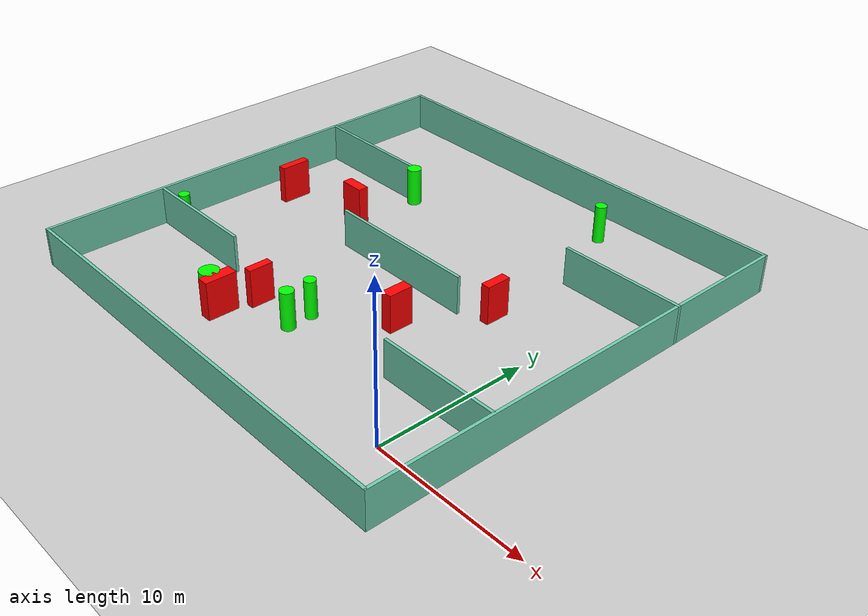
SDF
<sdf version="1.7">
 <world name="default">
  <light name="sun" type="directional">
   <pose>0 0 10 0 -0 0</pose>
   <diffuse>0.8 0.8 0.8 1</diffuse>
   <specular>0.2 0.2 0.2 1</specular>
   <attenuation>
    <range>1000</range>
    <constant>0.9</constant>
    <linear>0.01</linear>
    <quadratic>0.001</quadratic>
   </attenuation>
   <direction>-0.5 0.1 -0.9</direction>
   <spot><inner_angle>0</inner_angle><outer_angle>0</outer_angle><falloff>0</falloff></spot>
  </light>
  <model name="ground_plane">
   <static>1</static>
   <link name="link">
    <collision name="collision">
     <geometry><plane><normal>0 0 1</normal><size>100 100</size></plane></geometry>
     <surface>
      <contact><collide_bitmask>65535</collide_bitmask></contact>
      <friction><ode><mu>100</mu><mu2>50</mu2></ode></friction>
     </surface>
    </collision>
    <visual name="visual">
     <cast_shadows>0</cast_shadows>
     <geometry><plane><normal>0 0 1</normal><size>100 100</size></plane></geometry>
     <material>
      <script><uri>file://media/materials/scripts/gazebo.material</uri><name>Gazebo/Grey</name></script>
     </material>
    </visual>
   </link>
  </model>
  <gravity>0 0 -9.8</gravity>
  <magnetic_field>6e-06 2.3e-05 -4.2e-05</magnetic_field>
  <atmosphere type="adiabatic"/>
  <physics type="ode">
   <max_step_size>0.001</max_step_size>
   <real_time_factor>1</real_time_factor>
   <real_time_update_rate>1000</real_time_update_rate>
  </physics>
  <scene><ambient>0.4 0.4 0.4 1</ambient><background>0.7 0.7 0.7 1</background><shadows>1</shadows></scene>
  <spherical_coordinates>
   <surface_model>EARTH_WGS84</surface_model>
   <latitude_deg>0</latitude_deg>
   <longitude_deg>0</longitude_deg>
   <elevation>0</elevation>
   <heading_deg>0</heading_deg>
  </spherical_coordinates>
  <model name="my_base_walls">
   <link name="Wall_10">
    <collision name="Wall_10_Collision">
     <geometry><box><size>8.2 0.2 2.5</size></box></geometry>
     <pose>0 0 1.25 0 -0 0</pose>
    </collision>
    <visual name="Wall_10_Visual">
     <pose>0 0 1.25 0 -0 0</pose>
     <geometry><box><size>8.2 0.2 2.5</size></box></geometry>
     <material>
      <script><uri>file://media/materials/scripts/gazebo.material</uri><name>Gazebo/Grey</name></script>
      <ambient>0.435294 0.796078 0.67451 1</ambient>
     </material>
     <meta><layer>0</layer></meta>
    </visual>
    <pose>-11 -7 0 0 -0 0</pose>
   </link>
   <link name="Wall_12">
    <collision name="Wall_12_Collision">
     <geometry><box><size>8.2 0.2 2.5</size></box></geometry>
     <pose>0 0 1.25 0 -0 0</pose>
    </collision>
    <visual name="Wall_12_Visual">
     <pose>0 0 1.25 0 -0 0</pose>
     <geometry><box><size>8.2 0.2 2.5</size></box></geometry>
     <material>
      <script><uri>file://media/materials/scripts/gazebo.material</uri><name>Gazebo/Grey</name></script>
      <ambient>0.435294 0.796078 0.67451 1</ambient>
     </material>
     <meta><layer>0</layer></meta>
    </visual>
    <pose>-11 7 0 0 -0 0</pose>
   </link>
   <link name="Wall_14">
    <collision name="Wall_14_Collision">
     <geometry><box><size>8.2 0.2 2.5</size></box></geometry>
     <pose>0 0 1.25 0 -0 0</pose>
    </collision>
    <visual name="Wall_14_Visual">
     <pose>0 0 1.25 0 -0 0</pose>
     <geometry><box><size>8.2 0.2 2.5</size></box></geometry>
     <material>
      <script><uri>file://media/materials/scripts/gazebo.material</uri><name>Gazebo/Grey</name></script>
      <ambient>0.435294 0.796078 0.67451 1</ambient>
     </material>
     <meta><layer>0</layer></meta>
    </visual>
    <pose>11 7 0 0 -0 3.14159</pose>
   </link>
   <link name="Wall_16">
    <collision name="Wall_16_Collision">
     <geometry><box><size>10.2 0.2 2.5</size></box></geometry>
     <pose>0 0 1.25 0 -0 0</pose>
    </collision>
    <visual name="Wall_16_Visual">
     <pose>0 0 1.25 0 -0 0</pose>
     <geometry><box><size>10.2 0.2 2.5</size></box></geometry>
     <material>
      <script><uri>file://media/materials/scripts/gazebo.material</uri><name>Gazebo/Grey</name></script>
      <ambient>0.435294 0.796078 0.67451 1</ambient>
     </material>
     <meta><layer>0</layer></meta>
    </visual>
    <pose>0 0 0 0 -0 3.14159</pose>
   </link>
   <link name="Wall_2">
    <collision name="Wall_2_Collision">
     <geometry><box><size>30.2 0.2 2.5</size></box></geometry>
     <pose>0 0 1.25 0 -0 0</pose>
    </collision>
    <visual name="Wall_2_Visual">
     <pose>0 0 1.25 0 -0 0</pose>
     <geometry><box><size>30.2 0.2 2.5</size></box></geometry>
     <material>
      <script><uri>file://media/materials/scripts/gazebo.material</uri><name>Gazebo/Grey</name></script>
      <ambient>0.435294 0.796078 0.67451 1</ambient>
     </material>
     <meta><layer>0</layer></meta>
    </visual>
    <pose>0 -15 0 0 -0 3.14159</pose>
   </link>
   <link name="Wall_3">
    <collision name="Wall_3_Collision">
     <geometry><box><size>30.2 0.2 2.5</size></box></geometry>
     <pose>0 0 1.25 0 -0 0</pose>
    </collision>
    <visual name="Wall_3_Visual">
     <pose>0 0 1.25 0 -0 0</pose>
     <geometry><box><size>30.2 0.2 2.5</size></box></geometry>
     <material>
      <script><uri>file://media/materials/scripts/gazebo.material</uri><name>Gazebo/Grey</name></script>
      <ambient>0.435294 0.796078 0.67451 1</ambient>
     </material>
     <meta><layer>0</layer></meta>
    </visual>
    <pose>-15 0 0 0 -0 1.5708</pose>
   </link>
   <link name="Wall_4">
    <collision name="Wall_4_Collision">
     <geometry><box><size>30.2 0.2 2.5</size></box></geometry>
     <pose>0 0 1.25 0 -0 0</pose>
    </collision>
    <visual name="Wall_4_Visual">
     <pose>0 0 1.25 0 -0 0</pose>
     <geometry><box><size>30.2 0.2 2.5</size></box></geometry>
     <material>
      <script><uri>file://media/materials/scripts/gazebo.material</uri><name>Gazebo/Grey</name></script>
      <ambient>0.435294 0.796078 0.67451 1</ambient>
     </material>
     <meta><layer>0</layer></meta>
    </visual>
    <pose>0 15 0 0 -0 0</pose>
   </link>
   <link name="Wall_6">
    <collision name="Wall_6_Collision">
     <geometry><box><size>30.2 0.2 2.5</size></box></geometry>
     <pose>0 0 1.25 0 -0 0</pose>
    </collision>
    <visual name="Wall_6_Visual">
     <pose>0 0 1.25 0 -0 0</pose>
     <geometry><box><size>30.2 0.2 2.5</size></box></geometry>
     <material>
      <script><uri>file://media/materials/scripts/gazebo.material</uri><name>Gazebo/Grey</name></script>
      <ambient>0.435294 0.796078 0.67451 1</ambient>
     </material>
     <meta><layer>0</layer></meta>
    </visual>
    <pose>15 0 0 0 -0 1.5708</pose>
   </link>
   <link name="Wall_8">
    <collision name="Wall_8_Collision">
     <geometry><box><size>8.2 0.2 2.5</size></box></geometry>
     <pose>0 0 1.25 0 -0 0</pose>
    </collision>
    <visual name="Wall_8_Visual">
     <pose>0 0 1.25 0 -0 0</pose>
     <geometry><box><size>8.2 0.2 2.5</size></box></geometry>
     <material>
      <script><uri>file://media/materials/scripts/gazebo.material</uri><name>Gazebo/Grey</name></script>
      <ambient>0.435294 0.796078 0.67451 1</ambient>
     </material>
     <meta><layer>0</layer></meta>
    </visual>
    <pose>11 -7 0 0 -0 3.14159</pose>
   </link>
   <static>1</static>
   <pose>-11 11 0 0 -0 0</pose>
  </model>
  <model name="cylinder1">
   <static>1</static>
   <link name="link">
    <inertial>
     <mass>1</mass>
     <inertia><ixx>0.5</ixx><ixy>0</ixy><ixz>0</ixz><iyy>0.5</iyy><iyz>0</iyz><izz>1</izz></inertia>
    </inertial>
    <collision name="collision">
     <geometry><cylinder><radius>0.35616410990683817</radius><length>2.5</length></cylinder></geometry>
    </collision>
    <visual name="visual">
     <geometry><cylinder><radius>0.35616410990683817</radius><length>2.5</length></cylinder></geometry>
     <material>
      <ambient>0 1 0 1</ambient>
      <diffuse>0 1 0 1</diffuse>
      <specular>0.1 0.1 0.1 1</specular>
      <emissive>0 0 0 0</emissive>
     </material>
    </visual>
   </link>
   <pose>-24.415938988960544 4.564173222321256 1.25 0 0 0</pose>
  </model>
  <model name="cylinder2">
   <static>1</static>
   <link name="link">
    <inertial>
     <mass>1</mass>
     <inertia><ixx>0.5</ixx><ixy>0</ixy><ixz>0</ixz><iyy>0.5</iyy><iyz>0</iyz><izz>1</izz></inertia>
    </inertial>
    <collision name="collision">
     <geometry><cylinder><radius>0.6218655024734534</radius><length>2.5</length></cylinder></geometry>
    </collision>
    <visual name="visual">
     <geometry><cylinder><radius>0.6218655024734534</radius><length>2.5</length></cylinder></geometry>
     <material>
      <ambient>0 1 0 1</ambient>
      <diffuse>0 1 0 1</diffuse>
      <specular>0.1 0.1 0.1 1</specular>
      <emissive>0 0 0 0</emissive>
     </material>
    </visual>
   </link>
   <pose>-15.714042630187972 0.7470523739744555 1.25 0 0 0</pose>
  </model>
  <model name="cylinder3">
   <static>1</static>
   <link name="link">
    <inertial>
     <mass>1</mass>
     <inertia><ixx>0.5</ixx><ixy>0</ixy><ixz>0</ixz><iyy>0.5</iyy><iyz>0</iyz><izz>1</izz></inertia>
    </inertial>
    <collision name="collision">
     <geometry><cylinder><radius>0.3817327580470411</radius><length>2.5</length></cylinder></geometry>
    </collision>
    <visual name="visual">
     <geometry><cylinder><radius>0.3817327580470411</radius><length>2.5</length></cylinder></geometry>
     <material>
      <ambient>0 1 0 1</ambient>
      <diffuse>0 1 0 1</diffuse>
      <specular>0.1 0.1 0.1 1</specular>
      <emissive>0 0 0 0</emissive>
     </material>
    </visual>
   </link>
   <pose>-11.198759305040495 4.494377592120104 1.25 0 0 0</pose>
  </model>
  <model name="cylinder4">
   <static>1</static>
   <link name="link">
    <inertial>
     <mass>1</mass>
     <inertia><ixx>0.5</ixx><ixy>0</ixy><ixz>0</ixz><iyy>0.5</iyy><iyz>0</iyz><izz>1</izz></inertia>
    </inertial>
    <collision name="collision">
     <geometry><cylinder><radius>0.3669790639889936</radius><length>2.5</length></cylinder></geometry>
    </collision>
    <visual name="visual">
     <geometry><cylinder><radius>0.3669790639889936</radius><length>2.5</length></cylinder></geometry>
     <material>
      <ambient>0 1 0 1</ambient>
      <diffuse>0 1 0 1</diffuse>
      <specular>0.1 0.1 0.1 1</specular>
      <emissive>0 0 0 0</emissive>
     </material>
    </visual>
   </link>
   <pose>-6.1283687948692975 23.349534166433184 1.25 0 0 0</pose>
  </model>
  <model name="cylinder5">
   <static>1</static>
   <link name="link">
    <inertial>
     <mass>1</mass>
     <inertia><ixx>0.5</ixx><ixy>0</ixy><ixz>0</ixz><iyy>0.5</iyy><iyz>0</iyz><izz>1</izz></inertia>
    </inertial>
    <collision name="collision">
     <geometry><cylinder><radius>0.44059958313072795</radius><length>2.5</length></cylinder></geometry>
    </collision>
    <visual name="visual">
     <geometry><cylinder><radius>0.44059958313072795</radius><length>2.5</length></cylinder></geometry>
     <material>
      <ambient>0 1 0 1</ambient>
      <diffuse>0 1 0 1</diffuse>
      <specular>0.1 0.1 0.1 1</specular>
      <emissive>0 0 0 0</emissive>
     </material>
    </visual>
   </link>
   <pose>-11.160636026356151 2.843658290977385 1.25 0 0 0</pose>
  </model>
  <model name="cylinder6">
   <static>1</static>
   <link name="link">
    <inertial>
     <mass>1</mass>
     <inertia><ixx>0.5</ixx><ixy>0</ixy><ixz>0</ixz><iyy>0.5</iyy><iyz>0</iyz><izz>1</izz></inertia>
    </inertial>
    <collision name="collision">
     <geometry><cylinder><radius>0.4701286073484526</radius><length>2.5</length></cylinder></geometry>
    </collision>
    <visual name="visual">
     <geometry><cylinder><radius>0.4701286073484526</radius><length>2.5</length></cylinder></geometry>
     <material>
      <ambient>0 1 0 1</ambient>
      <diffuse>0 1 0 1</diffuse>
      <specular>0.1 0.1 0.1 1</specular>
      <emissive>0 0 0 0</emissive>
     </material>
    </visual>
   </link>
   <pose>-17.497675372075488 17.89380539932796 1.25 0 0 0</pose>
  </model>
  <model name="box1">
   <static>1</static>
   <link name="link">
    <inertial>
     <mass>1</mass>
     <inertia><ixx>0.083</ixx><ixy>0</ixy><ixz>0</ixz><iyy>0.083</iyy><iyz>0</iyz><izz>0.083</izz></inertia>
    </inertial>
    <collision name="collision">
     <geometry><box><size>0.5888203377884024 1.6265859462894654 2.5</size></box></geometry>
    </collision>
    <visual name="visual">
     <geometry><box><size>0.5888203377884024 1.6265859462894654 2.5</size></box></geometry>
     <material>
      <ambient>1 0 0 1</ambient>
      <diffuse>1 0 0 1</diffuse>
      <specular>0.1 0.1 0.1 1</specular>
      <emissive>0 0 0 0</emissive>
     </material>
    </visual>
    <sensor name="my_contact" type="contact">
     <contact><collision>box_collision</collision><topic>__default_topic__</topic></contact>
    </sensor>
   </link>
   <pose>-4.275589017489995 12.277458902658818 1.25 0 0 0</pose>
  </model>
  <model name="box2">
   <static>1</static>
   <link name="link">
    <inertial>
     <mass>1</mass>
     <inertia><ixx>0.083</ixx><ixy>0</ixy><ixz>0</ixz><iyy>0.083</iyy><iyz>0</iyz><izz>0.083</izz></inertia>
    </inertial>
    <collision name="collision">
     <geometry><box><size>0.5250984265103604 1.9872496736859016 2.5</size></box></geometry>
    </collision>
    <visual name="visual">
     <geometry><box><size>0.5250984265103604 1.9872496736859016 2.5</size></box></geometry>
     <material>
      <ambient>1 0 0 1</ambient>
      <diffuse>1 0 0 1</diffuse>
      <specular>0.1 0.1 0.1 1</specular>
      <emissive>0 0 0 0</emissive>
     </material>
    </visual>
    <sensor name="my_contact" type="contact">
     <contact><collision>box_collision</collision><topic>__default_topic__</topic></contact>
    </sensor>
   </link>
   <pose>-23.293427354852394 12.356483033826246 1.25 0 0 0</pose>
  </model>
  <model name="box3">
   <static>1</static>
   <link name="link">
    <inertial>
     <mass>1</mass>
     <inertia><ixx>0.083</ixx><ixy>0</ixy><ixz>0</ixz><iyy>0.083</iyy><iyz>0</iyz><izz>0.083</izz></inertia>
    </inertial>
    <collision name="collision">
     <geometry><box><size>1.632762046780756 0.6880876397930101 2.5</size></box></geometry>
    </collision>
    <visual name="visual">
     <geometry><box><size>1.632762046780756 0.6880876397930101 2.5</size></box></geometry>
     <material>
      <ambient>1 0 0 1</ambient>
      <diffuse>1 0 0 1</diffuse>
      <specular>0.1 0.1 0.1 1</specular>
      <emissive>0 0 0 0</emissive>
     </material>
    </visual>
    <sensor name="my_contact" type="contact">
     <contact><collision>box_collision</collision><topic>__default_topic__</topic></contact>
    </sensor>
   </link>
   <pose>-18.329940172688104 13.567627110381515 1.25 0 0 0</pose>
  </model>
  <model name="box4">
   <static>1</static>
   <link name="link">
    <inertial>
     <mass>1</mass>
     <inertia><ixx>0.083</ixx><ixy>0</ixy><ixz>0</ixz><iyy>0.083</iyy><iyz>0</iyz><izz>0.083</izz></inertia>
    </inertial>
    <collision name="collision">
     <geometry><box><size>0.7757945169898666 2.044531981248954 2.5</size></box></geometry>
    </collision>
    <visual name="visual">
     <geometry><box><size>0.7757945169898666 2.044531981248954 2.5</size></box></geometry>
     <material>
      <ambient>1 0 0 1</ambient>
      <diffuse>1 0 0 1</diffuse>
      <specular>0.1 0.1 0.1 1</specular>
      <emissive>0 0 0 0</emissive>
     </material>
    </visual>
    <sensor name="my_contact" type="contact">
     <contact><collision>box_collision</collision><topic>__default_topic__</topic></contact>
    </sensor>
   </link>
   <pose>-14.981625920548248 0.8269080074494286 1.25 0 0 0</pose>
  </model>
  <model name="box5">
   <static>1</static>
   <link name="link">
    <inertial>
     <mass>1</mass>
     <inertia><ixx>0.083</ixx><ixy>0</ixy><ixz>0</ixz><iyy>0.083</iyy><iyz>0</iyz><izz>0.083</izz></inertia>
    </inertial>
    <collision name="collision">
     <geometry><box><size>0.5268699716911668 1.5792524125430605 2.5</size></box></geometry>
    </collision>
    <visual name="visual">
     <geometry><box><size>0.5268699716911668 1.5792524125430605 2.5</size></box></geometry>
     <material>
      <ambient>1 0 0 1</ambient>
      <diffuse>1 0 0 1</diffuse>
      <specular>0.1 0.1 0.1 1</specular>
      <emissive>0 0 0 0</emissive>
     </material>
    </visual>
    <sensor name="my_contact" type="contact">
     <contact><collision>box_collision</collision><topic>__default_topic__</topic></contact>
    </sensor>
   </link>
   <pose>-14.336340865718615 3.2055938832915647 1.25 0 0 0</pose>
  </model>
  <model name="box6">
   <static>1</static>
   <link name="link">
    <inertial>
     <mass>1</mass>
     <inertia><ixx>0.083</ixx><ixy>0</ixy><ixz>0</ixz><iyy>0.083</iyy><iyz>0</iyz><izz>0.083</izz></inertia>
    </inertial>
    <collision name="collision">
     <geometry><box><size>0.728488648886775 1.6240166747588813 2.5</size></box></geometry>
    </collision>
    <visual name="visual">
     <geometry><box><size>0.728488648886775 1.6240166747588813 2.5</size></box></geometry>
     <material>
      <ambient>1 0 0 1</ambient>
      <diffuse>1 0 0 1</diffuse>
      <specular>0.1 0.1 0.1 1</specular>
      <emissive>0 0 0 0</emissive>
     </material>
    </visual>
    <sensor name="my_contact" type="contact">
     <contact><collision>box_collision</collision><topic>__default_topic__</topic></contact>
    </sensor>
   </link>
   <pose>-7.268090261165277 7.562472253370508 1.25 0 0 0</pose>
  </model>
 </world>
</sdf>
